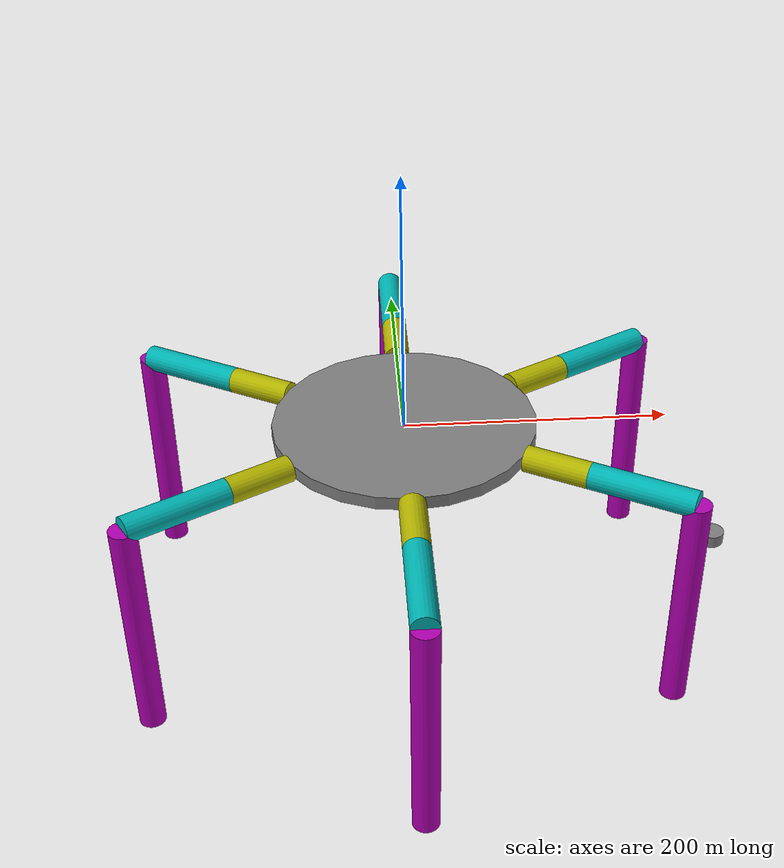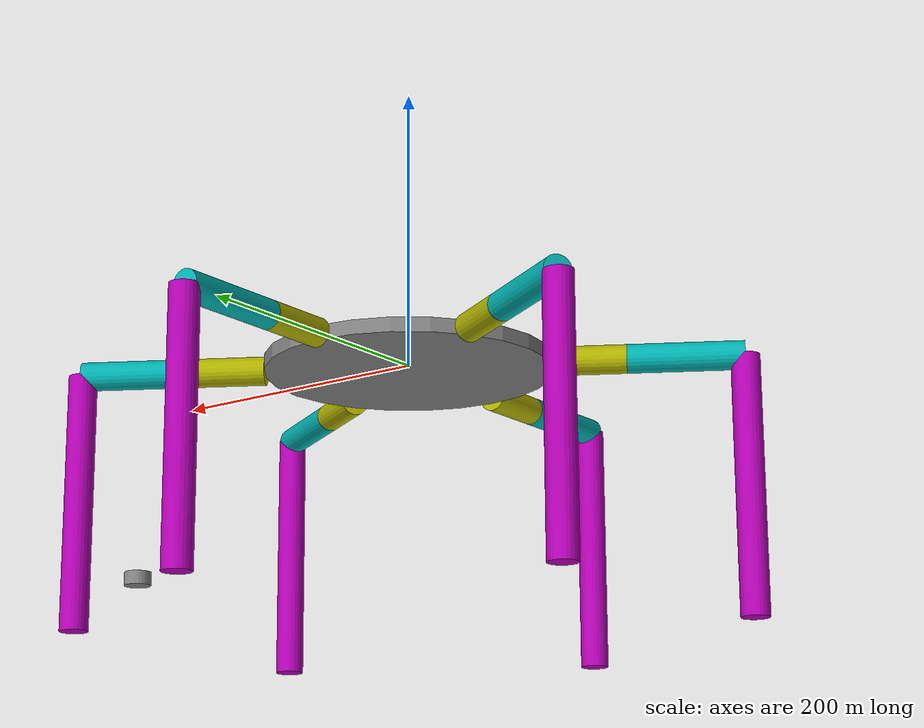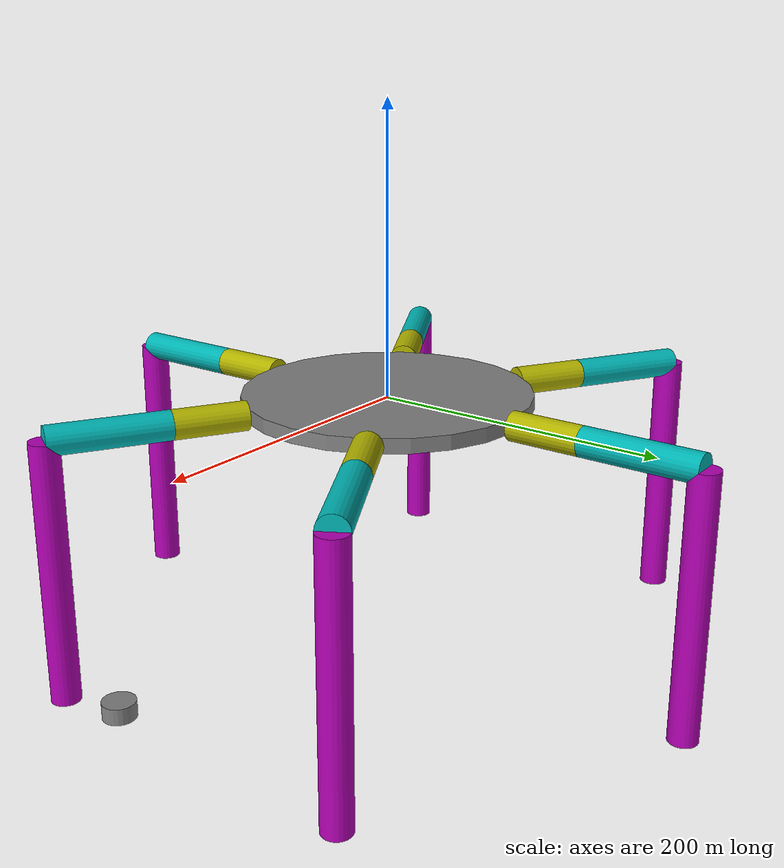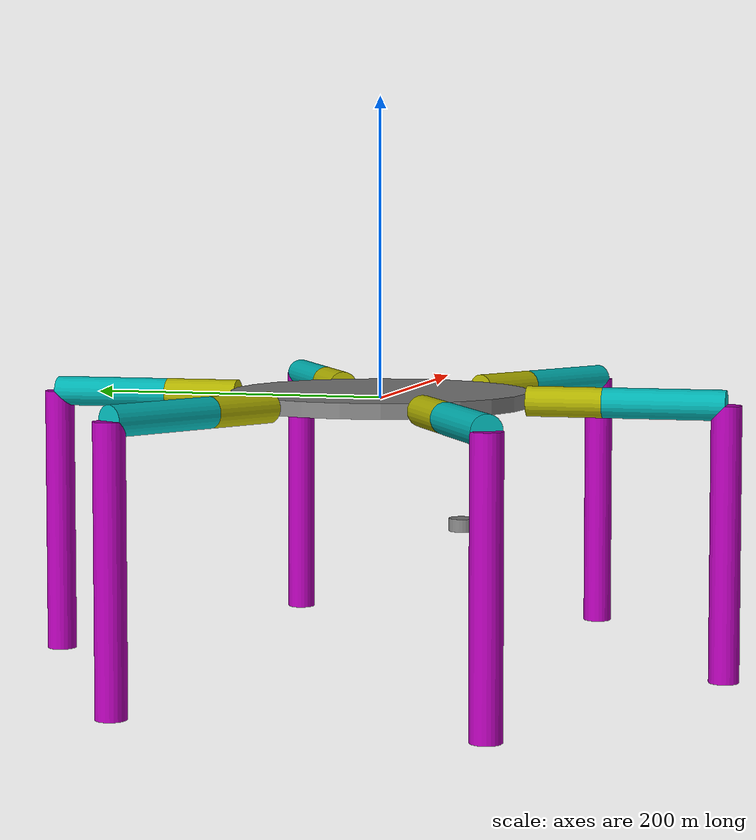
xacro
<?xml version="1.0"?>
<robot xmlns:xacro="http://ros.org/wiki/xacro" name="crab">

<!-- Build the body frame -->

	<link name="base_link" />
	<joint name="foot_tip_test" type="fixed">
		<parent link="base_link" />
		<child link="foot_tip_test" />
		<origin xyz="0 0 0" rpy="0 0 0" />
	</joint>
	<link name="foot_tip_test" >
		<visual>
      			<origin	xyz="250 0 -120" rpy="0 0 0" />
      			<geometry>
				<cylinder length="10" radius="10"/>
      			</geometry>
     			<material name="grey">
        			<color rgba="0.5 0.5 0.5 1" />
      			</material>
    		</visual>
	</link>
	<joint name="base_joint" type="fixed">
		<parent link="base_link" />
		<child link="thorax" />
		<origin xyz="0 0 0" rpy="0 0 0" />
	</joint>

	<link name="thorax">
    		<visual>
      			<origin	xyz="0 0 0" rpy="0 0 0" />
      			<geometry>
				<cylinder length="10" radius="100"/>
      			</geometry>
     			<material name="grey">
        			<color rgba="0.5 0.5 0.5 1" />
      			</material>
    		</visual>
	</link>

<!-- Pi parameter -->
	<xacro:property name="pi" value="3.1415926535897931" />

<!-- Joint properties -->
	<xacro:property name="joint_lower_limit" value="-${1.9}" />
	<xacro:property name="joint_upper_limit" value="${2.5}" />
	<xacro:property name="joint_effort" value="10000" />
	<xacro:property name="joint_velocity" value="100" />

<!-- Leg macros -->
	<xacro:macro name="leg" params="side num x y angle">

<!-- Build leg -->
  	<joint name="leg_center_joint_${side}${num}" type="fixed">
    		<origin xyz="${x} ${y} 0" rpy="0 0 0" />
    		<parent link="thorax" />
    		<child link="leg_center_${side}${num}" />
  	</joint>

    	<link name="leg_center_${side}${num}" />

	<joint name="coxa_joint_${side}${num}" type="revolute">
    		<origin xyz="0 0 0" rpy="0 0 ${angle}" />
    		<parent link="leg_center_${side}${num}" />
    		<child link="coxa_${side}${num}" />
    		<axis xyz="0 0 1" />
    		<limit lower="${joint_lower_limit}" upper="${joint_upper_limit}" effort="${joint_effort}" velocity="${joint_velocity}" />
  	</joint>

<!-- link: coxal1-->

  	<link name="coxa_${side}${num}">
    		<visual>
      			<origin xyz="25 0 0" rpy="0 ${pi/2} 0" />
      			<geometry>
        			<cylinder length="50" radius="10"/>
      			</geometry>
      			<material name="">
        			<color rgba="0.7 0.7 0 1" />
      			</material>
    		</visual>
  	</link>

  	<joint name="femur_joint_${side}${num}" type="revolute">
    		<origin xyz="50 0 0" rpy="-${pi/2} 0 0" />
    		<parent link="coxa_${side}${num}" />
    		<child link="femur_${side}${num}" />
    		<axis xyz="0 0 -1" />
    		<limit lower="${joint_lower_limit}" upper="${joint_upper_limit}" effort="${joint_effort}" velocity="${joint_velocity}" />
  	</joint>

  	<link name="femur_${side}${num}">
    		<visual>
      			<origin xyz="40 0 0" rpy="0 ${pi/2} 0" />
      			<geometry>
        			<cylinder length="80" radius="10"/>
      			</geometry>
      			<material name="">
        			<color rgba="0 0.7 0.7 1" />
      			</material>
    		</visual>
  	</link>

  	<joint name="tibia_joint_${side}${num}" type="revolute">
    		<origin xyz="80 0 0" rpy="${pi} 0 ${pi/2}" />
    		<parent link="femur_${side}${num}" />
    		<child link="tibia_${side}${num}" />
    		<axis xyz="0 0 1" />
    		<limit lower="${joint_lower_limit}" upper="${joint_upper_limit}" effort="${joint_effort}" velocity="${joint_velocity}" />
  	</joint>

  	<link name="tibia_${side}${num}">
    		<visual>
      			<origin xyz="90 0 0" rpy="0 ${pi/2} 0" />
      			<geometry>
       				 <cylinder length="180" radius="10"/>
      			</geometry>
      			<material name="">
        			<color rgba="0.7 0 0.7 1" />
      			</material>
    		</visual>
  	</link>

  	<joint name="tibia_foot_joint_${side}${num}" type="fixed">
    		<origin xyz="180 0 0" rpy="0 0 0" />
    		<parent link="tibia_${side}${num}" />
    		<child link="tibia_foot_${side}${num}" />
  	</joint>

  	<link name="tibia_foot_${side}${num}" />
	</xacro:macro>

<!-- Build robot model -->
	<xacro:leg side="r" num="1" x="86.60" y="-50" 	angle="-${pi/6}" />
	<xacro:leg side="r" num="2" x="0" y="-100" 	angle="-${pi/2}" />
	<xacro:leg side="r" num="3" x="-86.60" y="-50"  angle="-${pi*5/6}" />
	<xacro:leg side="l" num="1" x="-86.60" y="50"	angle="${pi*5/6}" />
	<xacro:leg side="l" num="2" x="0" y="100"	angle="${pi/2}" />
	<xacro:leg side="l" num="3" x="86.60" y="50"	angle="${pi/6}" />

</robot>
